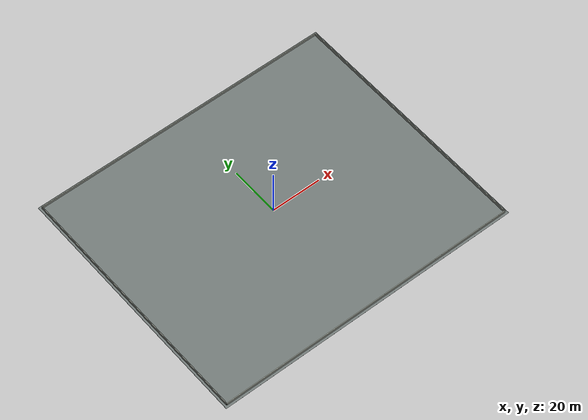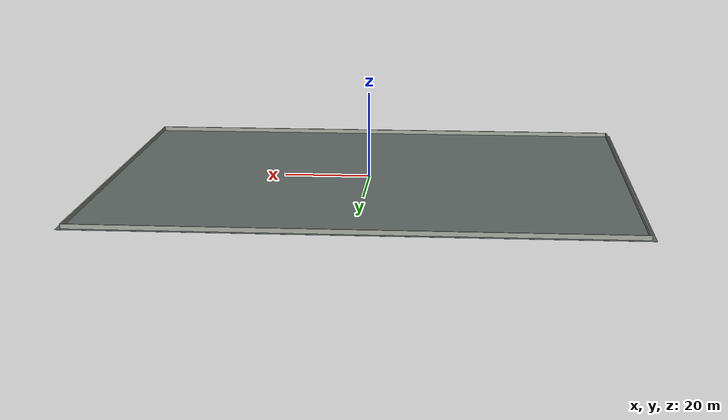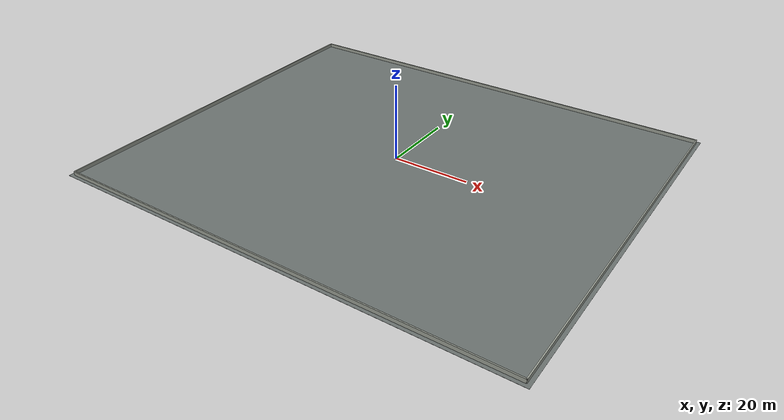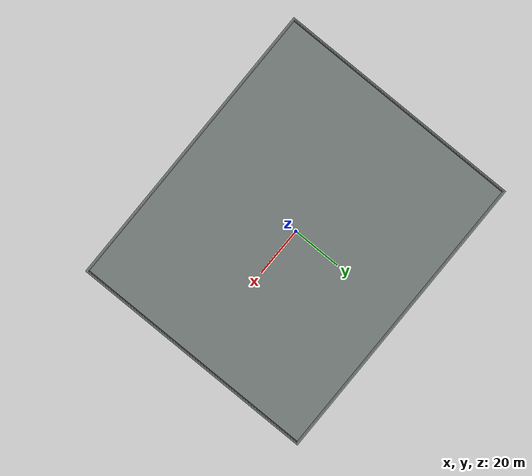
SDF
<?xml version="1.0"?>
<sdf version="1.6">
  <world name="version_car_large_test_field">
    <physics type="ode">
      <max_step_size>0.002</max_step_size>
      <real_time_update_rate>500</real_time_update_rate>
    </physics>

    <include>
      <uri>model://sun</uri>
    </include>

    <model name="large_ground">
      <static>true</static>
      <pose>0 0 -0.01 0 0 0</pose>
      <link name="link">
        <collision name="collision">
          <geometry>
            <box>
              <size>122.0 102.0 0.02</size>
            </box>
          </geometry>
        </collision>
        <visual name="visual">
          <geometry>
            <box>
              <size>122.0 102.0 0.02</size>
            </box>
          </geometry>
          <material>
            <ambient>0.36 0.39 0.38 1</ambient>
            <diffuse>0.42 0.45 0.44 1</diffuse>
          </material>
        </visual>
      </link>
    </model>

    <model name="north_wall">
      <static>true</static>
      <pose>0 50.0 0.5 0 0 0</pose>
      <link name="link">
        <collision name="collision">
          <laser_retro>100</laser_retro>
          <geometry>
            <box>
              <size>120.0 0.30 1.0</size>
            </box>
          </geometry>
        </collision>
        <visual name="visual">
          <geometry>
            <box>
              <size>120.0 0.30 1.0</size>
            </box>
          </geometry>
          <material>
            <ambient>0.6 0.62 0.58 1</ambient>
            <diffuse>0.6 0.62 0.58 1</diffuse>
          </material>
        </visual>
      </link>
    </model>

    <model name="south_wall">
      <static>true</static>
      <pose>0 -50.0 0.5 0 0 0</pose>
      <link name="link">
        <collision name="collision">
          <laser_retro>100</laser_retro>
          <geometry>
            <box>
              <size>120.0 0.30 1.0</size>
            </box>
          </geometry>
        </collision>
        <visual name="visual">
          <geometry>
            <box>
              <size>120.0 0.30 1.0</size>
            </box>
          </geometry>
          <material>
            <ambient>0.6 0.62 0.58 1</ambient>
            <diffuse>0.6 0.62 0.58 1</diffuse>
          </material>
        </visual>
      </link>
    </model>

    <model name="east_wall">
      <static>true</static>
      <pose>60.0 0 0.5 0 0 0</pose>
      <link name="link">
        <collision name="collision">
          <laser_retro>100</laser_retro>
          <geometry>
            <box>
              <size>0.30 100.0 1.0</size>
            </box>
          </geometry>
        </collision>
        <visual name="visual">
          <geometry>
            <box>
              <size>0.30 100.0 1.0</size>
            </box>
          </geometry>
          <material>
            <ambient>0.6 0.62 0.58 1</ambient>
            <diffuse>0.6 0.62 0.58 1</diffuse>
          </material>
        </visual>
      </link>
    </model>

    <model name="west_wall">
      <static>true</static>
      <pose>-60.0 0 0.5 0 0 0</pose>
      <link name="link">
        <collision name="collision">
          <laser_retro>100</laser_retro>
          <geometry>
            <box>
              <size>0.30 100.0 1.0</size>
            </box>
          </geometry>
        </collision>
        <visual name="visual">
          <geometry>
            <box>
              <size>0.30 100.0 1.0</size>
            </box>
          </geometry>
          <material>
            <ambient>0.6 0.62 0.58 1</ambient>
            <diffuse>0.6 0.62 0.58 1</diffuse>
          </material>
        </visual>
      </link>
    </model>
  </world>
</sdf>
